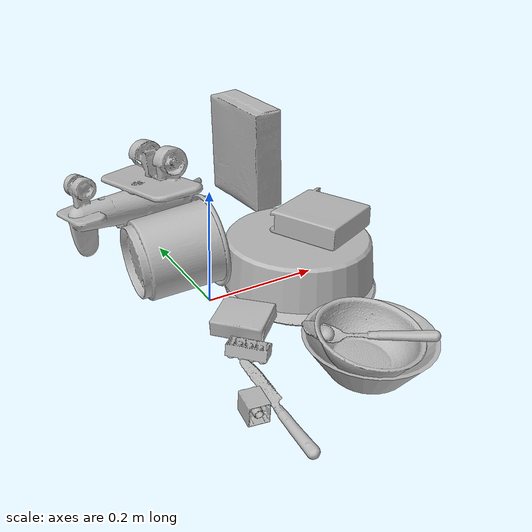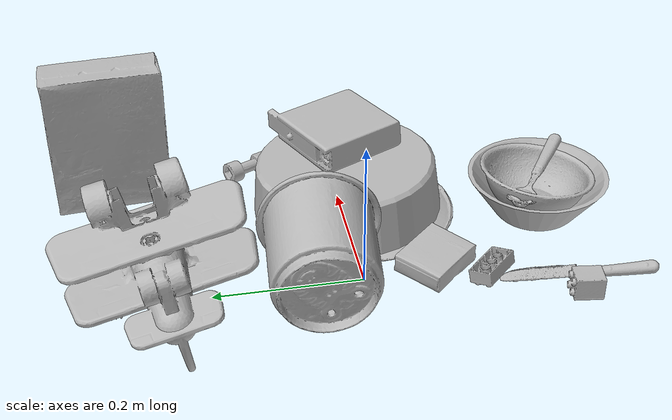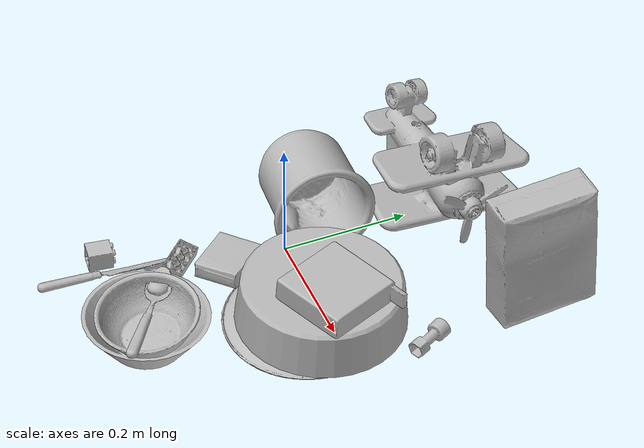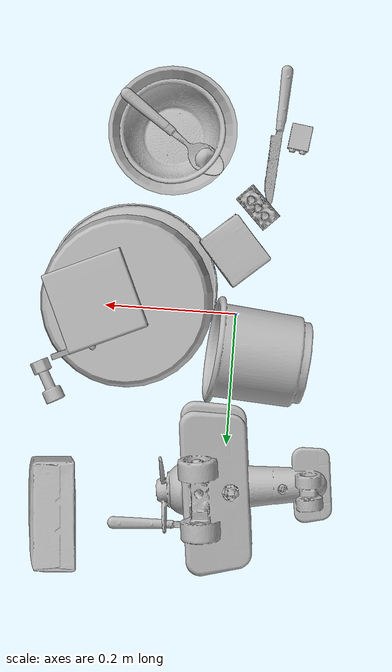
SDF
<sdf version="1.4">
  <world name="default">
    <light name="light1" type="point">
      <pose>0 0 1 0 0 0</pose>
      <diffuse>3 3 3 1</diffuse>
      <specular>3 3 3 1</specular>
    </light>
    <light name="light2" type="point">
      <pose>0 0.5 2 0 0 0</pose>
      <diffuse>1 1 1 1</diffuse>
      <specular>1 1 1 1</specular>
    </light>
    <light name="light3" type="point">
      <pose>0 0.5 2 0 0 0</pose>
      <diffuse>3 3 3 1</diffuse>
      <specular>3 3 3 1</specular>
    </light>
    <scene>
      <ambient>0.7 0.7 0.7</ambient>
    </scene>
    <model name="plate1">
      <link name="link_plate1">
        <collision name="default">
          <geometry>
            <mesh>
              <uri>model://plate/collision_meshes/collision.obj</uri>
              <scale>1.0 1.0 1.0</scale>
            </mesh>
          </geometry>
          <surface>
            <friction>
              <ode>
                <mu>0.5</mu>
                <mu2>0.5</mu2>
              </ode>
            </friction>
          <contact>
        <ode>
            <max_vel>0</max_vel>
            <min_depth>0.0001</min_depth>
            <kp>1e8</kp>
        </ode>
    </contact></surface>
        </collision>
        <visual name="default">
          <geometry>
            <mesh>
              <uri>model://plate/visual_meshes/visual.dae</uri>
              <scale>1.0 1.0 1.0</scale>
            </mesh>
          </geometry>
        </visual>
        <inertial>
          <mass>0.1516857147216797</mass>
          <pose>-0.0006044649053364992 0.00027825761935673654 -0.0010561972158029675 0.002218765199568956 -0.003225488596237322 0.4526153800388047</pose>
          <inertia>
            <ixx>0.00070958876</ixx>
            <iyy>0.0007028018</iyy>
            <izz>0.00138785</izz>
            <ixy>0</ixy>
            <ixz>0</ixz>
            <iyz>0</iyz>
          </inertia>
        </inertial>
      </link>
      <pose>0.1603841930627823 -0.02879299595952034 0.013395304791629314 3.1406513566456384 -0.0027720751440228147 1.1299335934183041</pose>
    </model>
    <model name="plate2">
      <link name="link_plate2">
        <collision name="default">
          <geometry>
            <mesh>
              <uri>model://pan_tefal/collision_meshes/collision.obj</uri>
              <scale>1.0 1.0 1.0</scale>
            </mesh>
          </geometry>
          <surface>
            <friction>
              <ode>
                <mu>0.5</mu>
                <mu2>0.5</mu2>
              </ode>
            </friction>
          <contact>
        <ode>
            <max_vel>0</max_vel>
            <min_depth>0.0001</min_depth>
            <kp>1e8</kp>
        </ode>
    </contact></surface>
        </collision>
        <visual name="default">
          <geometry>
            <mesh>
              <uri>model://pan_tefal/visual_meshes/visual.dae</uri>
              <scale>1.0 1.0 1.0</scale>
            </mesh>
          </geometry>
        </visual>
        <inertial>
          <mass>1.0862284898757935</mass>
          <pose>-0.00018001910939347 3.2794348953757435e-05 -0.00851493515074253 0.0008190334899032376 -0.0003301482999058744 -0.3318501395419688</pose>
          <inertia>
            <ixx>0.0074981838</ixx>
            <iyy>0.007546525</iyy>
            <izz>0.013802713</izz>
            <ixy>0</ixy>
            <ixz>0</ixz>
            <iyz>0</iyz>
          </inertia>
        </inertial>
      </link>
      <pose>0.16833147406578064 -0.007338114082813263 0.04513200372457504 -3.111251435232423 0.02683674944748586 2.057745187429667</pose>
    </model>
    <model name="bowl1">
      <link name="link_bowl1">
        <collision name="default">
          <geometry>
            <mesh>
              <uri>model://bowl_a/collision_meshes/collision.obj</uri>
              <scale>1.0 1.0 1.0</scale>
            </mesh>
          </geometry>
          <surface>
            <friction>
              <ode>
                <mu>0.5</mu>
                <mu2>0.5</mu2>
              </ode>
            </friction>
          <contact>
        <ode>
            <max_vel>0</max_vel>
            <min_depth>0.0001</min_depth>
            <kp>1e8</kp>
        </ode>
    </contact></surface>
        </collision>
        <visual name="default">
          <geometry>
            <mesh>
              <uri>model://bowl_a/visual_meshes/visual.dae</uri>
              <scale>1.0 1.0 1.0</scale>
            </mesh>
          </geometry>
        </visual>
        <inertial>
          <mass>0.23323877155780792</mass>
          <pose>0.0002786752884276211 4.7312129026977345e-05 -0.001376529224216938 -0.000980538139416196 -0.00109382495954127 -0.19123674059098103</pose>
          <inertia>
            <ixx>0.0006640416</ixx>
            <iyy>0.0006681184</iyy>
            <izz>0.0011810234</izz>
            <ixy>0</ixy>
            <ixz>0</ixz>
            <iyz>0</iyz>
          </inertia>
        </inertial>
      </link>
      <pose>0.11543012410402298 -0.2710191309452057 0.030382171273231506 -2.4618534851216746e-05 -3.642760567242121e-05 1.6508928759839614</pose>
    </model>
    <model name="bowl2">
      <link name="link_bowl2">
        <collision name="default">
          <geometry>
            <mesh>
              <uri>model://bowl/collision_meshes/collision.obj</uri>
              <scale>1.0 1.0 1.0</scale>
            </mesh>
          </geometry>
          <surface>
            <friction>
              <ode>
                <mu>0.5</mu>
                <mu2>0.5</mu2>
              </ode>
            </friction>
          <contact>
        <ode>
            <max_vel>0</max_vel>
            <min_depth>0.0001</min_depth>
            <kp>1e8</kp>
        </ode>
    </contact></surface>
        </collision>
        <visual name="default">
          <geometry>
            <mesh>
              <uri>model://bowl/visual_meshes/visual.dae</uri>
              <scale>1.0 1.0 1.0</scale>
            </mesh>
          </geometry>
        </visual>
        <inertial>
          <mass>0.08787161856889725</mass>
          <pose>0.00020445531117729843 -0.0010302038863301277 -0.0008042651461437345 -0.015764035308279474 0.014546860922519275 0.7140443952173783</pose>
          <inertia>
            <ixx>0.00020184812</ixx>
            <iyy>0.00019733804</iyy>
            <izz>0.00033957793</izz>
            <ixy>0</ixy>
            <ixz>0</ixz>
            <iyz>0</iyz>
          </inertia>
        </inertial>
      </link>
      <pose>0.11466600745916367 -0.26684901118278503 0.041221845895051956 -0.1216544342192536 0.03070224156710185 -2.4474463975539003</pose>
    </model>
    <model name="silverware1">
      <link name="link_silverware1">
        <collision name="default">
          <geometry>
            <mesh>
              <uri>model://spoon/collision_meshes/collision.obj</uri>
              <scale>1.0 1.0 1.0</scale>
            </mesh>
          </geometry>
          <surface>
            <friction>
              <ode>
                <mu>0.5</mu>
                <mu2>0.5</mu2>
              </ode>
            </friction>
          <contact>
        <ode>
            <max_vel>0</max_vel>
            <min_depth>0.0001</min_depth>
            <kp>1e8</kp>
        </ode>
    </contact></surface>
        </collision>
        <visual name="default">
          <geometry>
            <mesh>
              <uri>model://spoon/visual_meshes/visual.dae</uri>
              <scale>1.0 1.0 1.0</scale>
            </mesh>
          </geometry>
        </visual>
        <inertial>
          <mass>0.028818774968385696</mass>
          <pose>-0.0055263228714466095 -0.0016034181462600827 -0.0007271657814271748 0.03521556092832266 -0.039065843026344464 0.006150610888934851</pose>
          <inertia>
            <ixx>1.6029475e-06</ixx>
            <iyy>0.0001096545</iyy>
            <izz>0.000110445</izz>
            <ixy>0</ixy>
            <ixz>0</ixz>
            <iyz>0</iyz>
          </inertia>
        </inertial>
      </link>
      <pose>0.1147843450307846 -0.270298570394516 0.06268449872732162 -0.05190034999796777 0.07163255583814994 2.5167971209304247</pose>
    </model>
    <model name="box1">
      <link name="link_box1">
        <collision name="default">
          <geometry>
            <mesh>
              <uri>model://cracker_box/collision_meshes/collision.obj</uri>
              <scale>1.0 1.0 1.0</scale>
            </mesh>
          </geometry>
          <surface>
            <friction>
              <ode>
                <mu>0.5</mu>
                <mu2>0.5</mu2>
              </ode>
            </friction>
          <contact>
        <ode>
            <max_vel>0</max_vel>
            <min_depth>0.0001</min_depth>
            <kp>1e8</kp>
        </ode>
    </contact></surface>
        </collision>
        <visual name="default">
          <geometry>
            <mesh>
              <uri>model://cracker_box/visual_meshes/visual.dae</uri>
              <scale>1.0 1.0 1.0</scale>
            </mesh>
          </geometry>
        </visual>
        <inertial>
          <mass>2.9781224727630615</mass>
          <pose>0.0009464174509048462 0.00025434247800149024 -0.0017029534792527556 -0.0003162077703261406 -0.01110649239447325 0.0025467938390949236</pose>
          <inertia>
            <ixx>0.007575013</ixx>
            <iyy>0.012507835</iyy>
            <izz>0.017849829</izz>
            <ixy>0</ixy>
            <ixz>0</ixz>
            <iyz>0</iyz>
          </inertia>
        </inertial>
      </link>
      <pose>0.2550937533378601 0.3164674639701843 0.10730645060539246 -0.042440009638423766 1.5294902727839688 0.04231156331886853</pose>
    </model>
    <model name="box2">
      <link name="link_box2">
        <collision name="default">
          <geometry>
            <mesh>
              <uri>model://gelatin_box/collision_meshes/collision.obj</uri>
              <scale>1.0 1.0 1.0</scale>
            </mesh>
          </geometry>
          <surface>
            <friction>
              <ode>
                <mu>0.5</mu>
                <mu2>0.5</mu2>
              </ode>
            </friction>
          <contact>
        <ode>
            <max_vel>0</max_vel>
            <min_depth>0.0001</min_depth>
            <kp>1e8</kp>
        </ode>
    </contact></surface>
        </collision>
        <visual name="default">
          <geometry>
            <mesh>
              <uri>model://gelatin_box/visual_meshes/visual.dae</uri>
              <scale>1.0 1.0 1.0</scale>
            </mesh>
          </geometry>
        </visual>
        <inertial>
          <mass>0.16266882419586182</mass>
          <pose>0.0004319618456065655 0.00011156871914863586 -0.0003640321083366871 -0.0010503720968416132 -0.004755819155016646 0.016440559472150423</pose>
          <inertia>
            <ixx>0.00011483092</ixx>
            <iyy>8.202313e-05</iyy>
            <izz>0.00017479825</izz>
            <ixy>0</ixy>
            <ixz>0</ixz>
            <iyz>0</iyz>
          </inertia>
        </inertial>
      </link>
      <pose>0.008302528411149979 -0.09712962806224823 0.017093533650040627 -3.08658939707193 0.05084204399405212 -2.418605579622716</pose>
    </model>
    <model name="cup1">
      <link name="link_cup1">
        <collision name="default">
          <geometry>
            <mesh>
              <uri>model://f_cups/collision_meshes/collision.obj</uri>
              <scale>2.0 2.0 2.0</scale>
            </mesh>
          </geometry>
          <surface>
            <friction>
              <ode>
                <mu>0.5</mu>
                <mu2>0.5</mu2>
              </ode>
            </friction>
          <contact>
        <ode>
            <max_vel>0</max_vel>
            <min_depth>0.0001</min_depth>
            <kp>1e8</kp>
        </ode>
    </contact></surface>
        </collision>
        <visual name="default">
          <geometry>
            <mesh>
              <uri>model://f_cups/visual_meshes/visual.dae</uri>
              <scale>2.0 2.0 2.0</scale>
            </mesh>
          </geometry>
        </visual>
        <inertial>
          <mass>0.6683602333068848</mass>
          <pose>-0.006342936307191849 -0.0012480152072384953 -0.0073110745288431644 0.7862253042657107 -0.260793604503958 -0.18237387444081576</pose>
          <inertia>
            <ixx>0.0025131067</ixx>
            <iyy>0.0026362767</iyy>
            <izz>0.0027444381</izz>
            <ixy>0</ixy>
            <ixz>0</ixz>
            <iyz>0</iyz>
          </inertia>
        </inertial>
      </link>
      <pose>-0.03759390860795975 0.06057006120681763 0.07420673221349716 1.1162334399319174 1.3535900160139123 1.0402060550711518</pose>
    </model>
    <model name="silverware2">
      <link name="link_silverware2">
        <collision name="default">
          <geometry>
            <mesh>
              <uri>model://knife/collision_meshes/collision.obj</uri>
              <scale>1.0 1.0 1.0</scale>
            </mesh>
          </geometry>
          <surface>
            <friction>
              <ode>
                <mu>0.5</mu>
                <mu2>0.5</mu2>
              </ode>
            </friction>
          <contact>
        <ode>
            <max_vel>0</max_vel>
            <min_depth>0.0001</min_depth>
            <kp>1e8</kp>
        </ode>
    </contact></surface>
        </collision>
        <visual name="default">
          <geometry>
            <mesh>
              <uri>model://knife/visual_meshes/visual.dae</uri>
              <scale>1.0 1.0 1.0</scale>
            </mesh>
          </geometry>
        </visual>
        <inertial>
          <mass>0.03087119571864605</mass>
          <pose>-0.023785250261425972 0.0015275123296305537 5.062009586254135e-05 0.07305987484925712 0.017248420899959087 -0.007409824084002247</pose>
          <inertia>
            <ixx>8.762499e-07</ixx>
            <iyy>0.000118602155</iyy>
            <izz>0.00011888435</izz>
            <ixy>0</ixy>
            <ixz>0</ixz>
            <iyz>0</iyz>
          </inertia>
        </inertial>
      </link>
      <pose>-0.04425888508558273 -0.2791193425655365 0.008268726989626884 -0.4322026465877224 -0.001588361403650865 1.496016138949061</pose>
    </model>
    <model name="silverware3">
      <link name="link_silverware3">
        <collision name="default">
          <geometry>
            <mesh>
              <uri>model://fork/collision_meshes/collision.obj</uri>
              <scale>1.0 1.0 1.0</scale>
            </mesh>
          </geometry>
          <surface>
            <friction>
              <ode>
                <mu>0.5</mu>
                <mu2>0.5</mu2>
              </ode>
            </friction>
          <contact>
        <ode>
            <max_vel>0</max_vel>
            <min_depth>0.0001</min_depth>
            <kp>1e8</kp>
        </ode>
    </contact></surface>
        </collision>
        <visual name="default">
          <geometry>
            <mesh>
              <uri>model://fork/visual_meshes/visual.dae</uri>
              <scale>1.0 1.0 1.0</scale>
            </mesh>
          </geometry>
        </visual>
        <inertial>
          <mass>0.015284496359527111</mass>
          <pose>-0.02957003004848957 0.00046588233090005815 0.00032188600744120777 -0.013550803329795006 -0.010977829430356707 0.014453895799763906</pose>
          <inertia>
            <ixx>5.358081e-07</ixx>
            <iyy>3.9903432e-05</iyy>
            <izz>4.0143095e-05</izz>
            <ixy>0</ixy>
            <ixz>0</ixz>
            <iyz>0</iyz>
          </inertia>
        </inertial>
      </link>
      <pose>0.07479614019393921 0.3277011215686798 0.007945599034428596 -2.9537579937031437 -0.001807509427163068 -3.104648900972759</pose>
    </model>
    <model name="toy1">
      <link name="link_toy1">
        <collision name="default">
          <geometry>
            <mesh>
              <uri>model://c_toy_airplane/collision_meshes/collision.obj</uri>
              <scale>1.0 1.0 1.0</scale>
            </mesh>
          </geometry>
          <surface>
            <friction>
              <ode>
                <mu>0.5</mu>
                <mu2>0.5</mu2>
              </ode>
            </friction>
          <contact>
        <ode>
            <max_vel>0</max_vel>
            <min_depth>0.0001</min_depth>
            <kp>1e8</kp>
        </ode>
    </contact></surface>
        </collision>
        <visual name="default">
          <geometry>
            <mesh>
              <uri>model://c_toy_airplane/visual_meshes/visual.dae</uri>
              <scale>1.0 1.0 1.0</scale>
            </mesh>
          </geometry>
        </visual>
        <inertial>
          <mass>0.014899278059601784</mass>
          <pose>-0.0002302424400113523 -4.428088118402229e-07 -0.006080529186874628 -0.00619304524108313 -0.016797611161866028 0.7655100812139064</pose>
          <inertia>
            <ixx>6.841441e-06</ixx>
            <iyy>6.822133e-06</iyy>
            <izz>1.6062353e-06</izz>
            <ixy>0</ixy>
            <ixz>0</ixz>
            <iyz>0</iyz>
          </inertia>
        </inertial>
      </link>
      <pose>0.280080646276474 0.12162993848323822 0.014369828626513481 -1.675905029717697 1.2157541017245341 -2.752229080735155</pose>
    </model>
    <model name="toy2">
      <link name="link_toy2">
        <collision name="default">
          <geometry>
            <mesh>
              <uri>model://nine_hole_peg_test/collision_meshes/collision.obj</uri>
              <scale>1.0 1.0 1.0</scale>
            </mesh>
          </geometry>
          <surface>
            <friction>
              <ode>
                <mu>0.5</mu>
                <mu2>0.5</mu2>
              </ode>
            </friction>
          <contact>
        <ode>
            <max_vel>0</max_vel>
            <min_depth>0.0001</min_depth>
            <kp>1e8</kp>
        </ode>
    </contact></surface>
        </collision>
        <visual name="default">
          <geometry>
            <mesh>
              <uri>model://nine_hole_peg_test/visual_meshes/visual.dae</uri>
              <scale>1.0 1.0 1.0</scale>
            </mesh>
          </geometry>
        </visual>
        <inertial>
          <mass>0.8674170970916748</mass>
          <pose>-0.004617386031895876 -0.009647614322602749 2.6460689696250483e-05 -0.0014666783129250742 0.0007194188660534222 -0.6342410037611789</pose>
          <inertia>
            <ixx>0.0013563493</ixx>
            <iyy>0.0012664091</iyy>
            <izz>0.0023767245</izz>
            <ixy>0</ixy>
            <ixz>0</ixz>
            <iyz>0</iyz>
          </inertia>
        </inertial>
      </link>
      <pose>0.22164711356163025 0.004234206397086382 0.10279034823179245 -3.110105801029705 0.03199732943312437 1.9833270449510498</pose>
    </model>
    <model name="toy3">
      <link name="link_toy3">
        <collision name="default">
          <geometry>
            <mesh>
              <uri>model://a_toy_airplane/collision_meshes/collision.obj</uri>
              <scale>1.0 1.0 1.0</scale>
            </mesh>
          </geometry>
          <surface>
            <friction>
              <ode>
                <mu>0.5</mu>
                <mu2>0.5</mu2>
              </ode>
            </friction>
          <contact>
        <ode>
            <max_vel>0</max_vel>
            <min_depth>0.0001</min_depth>
            <kp>1e8</kp>
        </ode>
    </contact></surface>
        </collision>
        <visual name="default">
          <geometry>
            <mesh>
              <uri>model://a_toy_airplane/visual_meshes/visual.dae</uri>
              <scale>1.0 1.0 1.0</scale>
            </mesh>
          </geometry>
        </visual>
        <inertial>
          <mass>1.0043106079101562</mass>
          <pose>0.02516508847475052 -0.003707321360707283 -0.0011962434509769082 -0.01201694293172648 -0.14663499629613377 0.0041490900747424425</pose>
          <inertia>
            <ixx>0.0036471337</ixx>
            <iyy>0.0053146123</iyy>
            <izz>0.0062227584</izz>
            <ixy>0</ixy>
            <ixz>0</ixz>
            <iyz>0</iyz>
          </inertia>
        </inertial>
      </link>
      <pose>-0.029115429148077965 0.2558642327785492 0.07453040778636932 2.9594098977037273 -0.1448910061086185 0.14820111422762997</pose>
    </model>
    <model name="toy4">
      <link name="link_toy4">
        <collision name="default">
          <geometry>
            <mesh>
              <uri>model://c_lego_duplo/collision_meshes/collision.obj</uri>
              <scale>1.0 1.0 1.0</scale>
            </mesh>
          </geometry>
          <surface>
            <friction>
              <ode>
                <mu>0.5</mu>
                <mu2>0.5</mu2>
              </ode>
            </friction>
          <contact>
        <ode>
            <max_vel>0</max_vel>
            <min_depth>0.0001</min_depth>
            <kp>1e8</kp>
        </ode>
    </contact></surface>
        </collision>
        <visual name="default">
          <geometry>
            <mesh>
              <uri>model://c_lego_duplo/visual_meshes/visual.dae</uri>
              <scale>1.0 1.0 1.0</scale>
            </mesh>
          </geometry>
        </visual>
        <inertial>
          <mass>0.019874408841133118</mass>
          <pose>0.0003164595691487193 0.0001946465636137873 0.0010453156428411603 -0.01152079101413275 0.005900072799474436 0.031100350485514378</pose>
          <inertia>
            <ixx>7.648045e-06</ixx>
            <iyy>2.443061e-06</iyy>
            <izz>8.937529e-06</izz>
            <ixy>0</ixy>
            <ixz>0</ixz>
            <iyz>0</iyz>
          </inertia>
        </inertial>
      </link>
      <pose>-0.022925352677702904 -0.16563577950000763 0.014124137349426746 3.1358406939485746 -0.21245887293238508 -2.3407184457330605</pose>
    </model>
    <model name="toy5">
      <link name="link_toy5">
        <collision name="default">
          <geometry>
            <mesh>
              <uri>model://b_lego_duplo/collision_meshes/collision.obj</uri>
              <scale>1.0 1.0 1.0</scale>
            </mesh>
          </geometry>
          <surface>
            <friction>
              <ode>
                <mu>0.5</mu>
                <mu2>0.5</mu2>
              </ode>
            </friction>
          <contact>
        <ode>
            <max_vel>0</max_vel>
            <min_depth>0.0001</min_depth>
            <kp>1e8</kp>
        </ode>
    </contact></surface>
        </collision>
        <visual name="default">
          <geometry>
            <mesh>
              <uri>model://b_lego_duplo/visual_meshes/visual.dae</uri>
              <scale>1.0 1.0 1.0</scale>
            </mesh>
          </geometry>
        </visual>
        <inertial>
          <mass>0.031542204320430756</mass>
          <pose>-0.0001105302435462363 -9.152341590379365e-06 0.001929428894072771 -0.03749493031375769 -0.026354084635952003 0.4518990108557965</pose>
          <inertia>
            <ixx>6.4553496e-06</ixx>
            <iyy>6.4987444e-06</iyy>
            <izz>5.7515063e-06</izz>
            <ixy>0</ixy>
            <ixz>0</ixz>
            <iyz>0</iyz>
          </inertia>
        </inertial>
      </link>
      <pose>-0.07914132624864578 -0.2740522027015686 0.01612118072807789 1.5723656998836348 -0.01200499477375531 3.0068683233467017</pose>
    </model>
  <physics type="ode">
      <max_contacts>50</max_contacts>
      <ode>
        <solver>
          <type>quick</type>
          <iters>75</iters>
        </solver>
        <constraints>
          <contact_max_correcting_vel>0</contact_max_correcting_vel>
          <contact_surface_layer>0</contact_surface_layer>
        </constraints>
      </ode>
    </physics></world>
</sdf>
